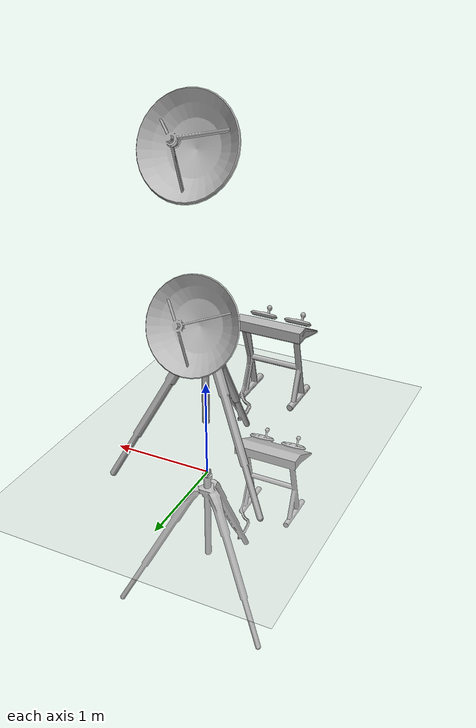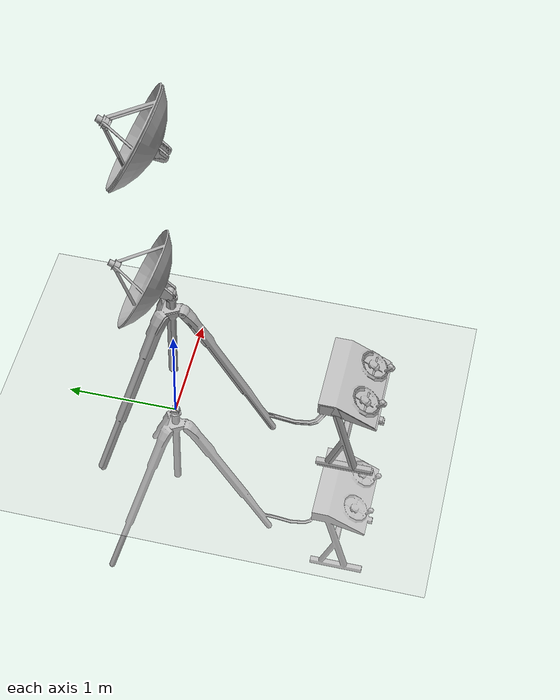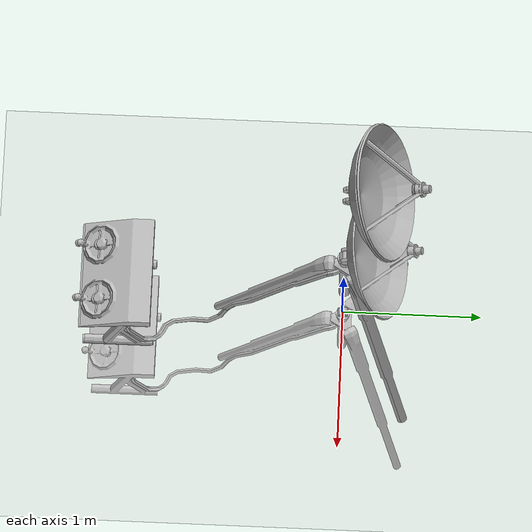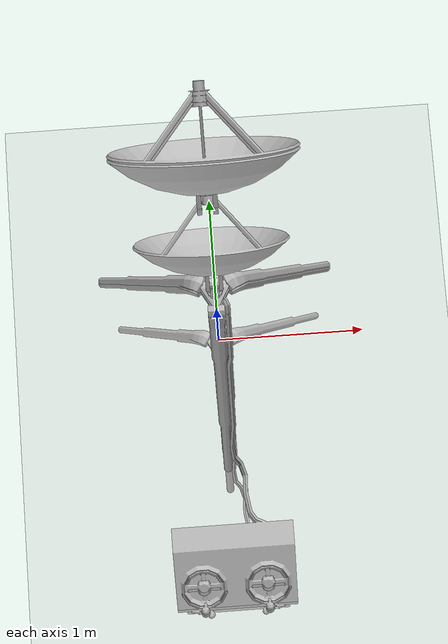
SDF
<?xml version="1.0" ?>
<sdf version="1.4">
  <world name="default">
    <!-- A global light source -->
    <include>
      <uri>model://sun</uri>
    </include>
    <!-- A ground plane -->
    <include>
      <uri>model://ground_plane</uri>
    </include>

    <include>
      <uri>model://satellite_dish</uri>
    </include>
  </world>
</sdf>

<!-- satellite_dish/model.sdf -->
<sdf version="1.5">
  <model name="satellite_dish">

    <link name="base">
      <inertial>
        <pose>0 -0.6077 0.3193 0 0 0</pose>
        <inertia>
          <ixx>165.1022</ixx>
          <ixy>0</ixy>
          <ixz>0</ixz>
          <iyy>13.8377</iyy>
          <iyz>0</iyz>
          <izz>170.3359</izz>
        </inertia>
        <mass>400</mass>
      </inertial>
      <collision name="collision">
        <geometry>
          <mesh>
            <uri>model://satellite_dish/meshes/satellite_dish.dae</uri>
            <submesh>
              <name>Base</name>
            </submesh>
          </mesh>
        </geometry>
      </collision>
      <visual name="visual">
        <geometry>
          <mesh>
            <uri>model://satellite_dish/meshes/satellite_dish.dae</uri>
            <submesh>
              <name>Base</name>
            </submesh>
          </mesh>
        </geometry>
      </visual>
    </link>

    <link name="pivot">
      <pose>0 0 1.595 0 0 0</pose>
      <inertial>
        <inertia>
          <ixx>0.00073</ixx>
          <ixy>0</ixy>
          <ixz>0</ixz>
          <iyy>0.000598</iyy>
          <iyz>0</iyz>
          <izz>0.00057</izz>
        </inertia>
        <mass>0.82</mass>
      </inertial>
      <collision name="collision">
        <pose>0 0 -1.595 0 0 0</pose>
        <geometry>
          <mesh>
            <uri>model://satellite_dish/meshes/satellite_dish.dae</uri>
            <submesh>
              <name>Pivot</name>
            </submesh>
          </mesh>
        </geometry>
      </collision>
      <visual name="visual">
        <pose>0 0 -1.595 0 0 0</pose>
        <geometry>
          <mesh>
            <uri>model://satellite_dish/meshes/satellite_dish.dae</uri>
            <submesh>
              <name>Pivot</name>
            </submesh>
          </mesh>
        </geometry>
      </visual>
    </link>

    <link name="dish">
      <pose>0 0 1.595 0.43 0 0</pose>
      <inertial>
        <pose>0 0.2 0 0 0 0</pose>
        <inertia>
          <ixx>9.2468</ixx>
          <ixy>0</ixy>
          <ixz>0</ixz>
          <iyy>18.7729</iyy>
          <iyz>0</iyz>
          <izz>9.7826</izz>
        </inertia>
        <mass>170.056</mass>
      </inertial>
      <collision name="collision">
        <pose>0 -1.325 -2.895 -0.43 0 0</pose>
        <geometry>
          <mesh>
            <uri>model://satellite_dish/meshes/satellite_dish.dae</uri>
            <submesh>
              <name>Dish</name>
            </submesh>
          </mesh>
        </geometry>
      </collision>
      <visual name="visual">
        <pose>0 -1.325 -2.895 -0.43 0 0</pose>
        <geometry>
          <mesh>
            <uri>model://satellite_dish/meshes/satellite_dish.dae</uri>
            <submesh>
              <name>Dish</name>
            </submesh>
          </mesh>
        </geometry>
      </visual>
    </link>

    <link name="wheel_yaw">
      <pose>-0.2 -1.725 0.91 0.52 0 0</pose>
      <inertial>
        <inertia>
          <ixx>0.03698</ixx>
          <ixy>0</ixy>
          <ixz>0</ixz>
          <iyy>0.03887</iyy>
          <iyz>0</iyz>
          <izz>0.07500</izz>
        </inertia>
        <mass>5.9697</mass>
      </inertial>
      <collision name="collision">
        <pose>0.2 1.065 -1.64 -0.52 0 0</pose>
        <geometry>
          <mesh>
            <uri>model://satellite_dish/meshes/satellite_dish.dae</uri>
            <submesh>
              <name>Wheel_01</name>
            </submesh>
          </mesh>
        </geometry>
      </collision>
      <visual name="visual">
        <pose>0.2 1.065 -1.64 -0.52 0 0</pose>
        <geometry>
          <mesh>
            <uri>model://satellite_dish/meshes/satellite_dish.dae</uri>
            <submesh>
              <name>Wheel_01</name>
            </submesh>
          </mesh>
        </geometry>
      </visual>
    </link>

    <link name="wheel_pitch">
      <pose>0.2 -1.725 0.91 0.52 0 0</pose>
      <inertial>
        <inertia>
          <ixx>0.03698</ixx>
          <ixy>0</ixy>
          <ixz>0</ixz>
          <iyy>0.03887</iyy>
          <iyz>0</iyz>
          <izz>0.07500</izz>
        </inertia>
        <mass>5.9697</mass>
      </inertial>
      <collision name="collision">
        <pose>-0.2 1.065 -1.64 -0.52 0 0</pose>
        <geometry>
          <mesh>
            <uri>model://satellite_dish/meshes/satellite_dish.dae</uri>
            <submesh>
              <name>Wheel_02</name>
            </submesh>
          </mesh>
        </geometry>
      </collision>
      <visual name="visual">
        <pose>-0.2 1.065 -1.64 -0.52 0 0</pose>
        <geometry>
          <mesh>
            <uri>model://satellite_dish/meshes/satellite_dish.dae</uri>
            <submesh>
              <name>Wheel_02</name>
            </submesh>
          </mesh>
        </geometry>
      </visual>
    </link>

    <joint name="dish_yaw" type="revolute">
      <parent>base</parent>
      <child>pivot</child>
      <axis>
        <xyz>0 0 1</xyz>
        <dynamics>
          <damping>1000</damping>
        </dynamics>
      </axis>
    </joint>

    <joint name="dish_pitch" type="revolute">
      <parent>pivot</parent>
      <child>dish</child>
      <axis>
        <xyz>1 0 0</xyz>
        <limit>
          <lower>-0.2</lower>
          <upper>1.57</upper>
        </limit>
        <dynamics>
          <damping>100</damping>
        </dynamics>
      </axis>
    </joint>

    <joint name="wheel_yaw" type="revolute">
      <parent>base</parent>
      <child>wheel_yaw</child>
      <axis>
        <xyz>0 0 1</xyz>
      </axis>
    </joint>

    <joint name="wheel_pitch" type="revolute">
      <parent>base</parent>
      <child>wheel_pitch</child>
      <axis>
        <xyz>0 0 1</xyz>
      </axis>
    </joint>

    <plugin name="satellite_plugin" filename="libSatelliteDish.so">

      <yaw_ratio>0.1</yaw_ratio>
      <yaw_pid>1000 0 10</yaw_pid>

      <pitch_ratio>0.1</pitch_ratio>
      <pitch_pid>1000 100 10</pitch_pid>

      <frequency>100</frequency>
    </plugin>

  </model>
</sdf>
